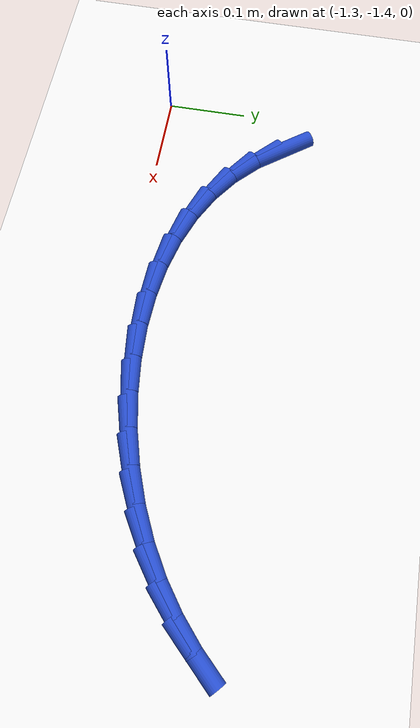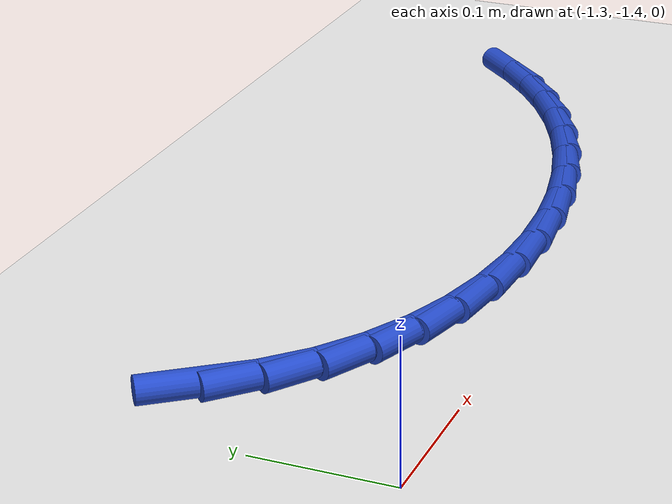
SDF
<sdf version="1.6">
 <world name="default">
  <model name="ground_plane">
   <static>1</static>
   <link name="link">
    <collision name="collision">
     <geometry><plane><normal>0 0 1</normal><size>100 100</size></plane></geometry>
     <surface><friction><ode><mu>100</mu><mu2>50</mu2></ode></friction></surface>
    </collision>
    <visual name="visual">
     <cast_shadows>0</cast_shadows>
     <geometry><plane><normal>0 0 1</normal><size>100 100</size></plane></geometry>
     <material>
      <script><uri>file://media/materials/scripts/gazebo.material</uri><name>Gazebo/WhiteGlow</name></script>
     </material>
    </visual>
   </link>
  </model>
  <model name="line">
   <link name="link_155">
    <pose>-1.2452337905211937 -1.2396163666302056 0.01 0 1.57 -0.9285341827054877</pose>
    <collision name="collision">
     <geometry><cylinder><radius>0.01</radius><length>0.08</length></cylinder></geometry>
    </collision>
    <visual name="visual">
     <material>
      <script><name>Gazebo/Blue</name><uri>file://media/materials/scripts/gazebo.material</uri></script>
     </material>
     <geometry><cylinder><radius>0.01</radius><length>0.08</length></cylinder></geometry>
    </visual>
   </link>
   <link name="link_156">
    <pose>-1.2212949467553944 -1.271617348525384 0.01 0 1.57 -0.7692866587407013</pose>
    <collision name="collision">
     <geometry><cylinder><radius>0.01</radius><length>0.08</length></cylinder></geometry>
    </collision>
    <visual name="visual">
     <material>
      <script><name>Gazebo/Blue</name><uri>file://media/materials/scripts/gazebo.material</uri></script>
     </material>
     <geometry><cylinder><radius>0.01</radius><length>0.08</length></cylinder></geometry>
    </visual>
   </link>
   <link name="link_157">
    <pose>-1.1931906292006225 -1.2988303438120599 0.01 0 1.57 -0.6185581953738359</pose>
    <collision name="collision">
     <geometry><cylinder><radius>0.01</radius><length>0.08</length></cylinder></geometry>
    </collision>
    <visual name="visual">
     <material>
      <script><name>Gazebo/Blue</name><uri>file://media/materials/scripts/gazebo.material</uri></script>
     </material>
     <geometry><cylinder><radius>0.01</radius><length>0.08</length></cylinder></geometry>
    </visual>
   </link>
   <link name="link_158">
    <pose>-1.161455115508071 -1.3214176069489603 0.01 0 1.57 -0.4797670484269586</pose>
    <collision name="collision">
     <geometry><cylinder><radius>0.01</radius><length>0.08</length></cylinder></geometry>
    </collision>
    <visual name="visual">
     <material>
      <script><name>Gazebo/Blue</name><uri>file://media/materials/scripts/gazebo.material</uri></script>
     </material>
     <geometry><cylinder><radius>0.01</radius><length>0.08</length></cylinder></geometry>
    </visual>
   </link>
   <link name="link_159">
    <pose>-1.1266227067140486 -1.339541424427525 0.01 0 1.57 -0.3540625128537004</pose>
    <collision name="collision">
     <geometry><cylinder><radius>0.01</radius><length>0.08</length></cylinder></geometry>
    </collision>
    <visual name="visual">
     <material>
      <script><name>Gazebo/Blue</name><uri>file://media/materials/scripts/gazebo.material</uri></script>
     </material>
     <geometry><cylinder><radius>0.01</radius><length>0.08</length></cylinder></geometry>
    </visual>
   </link>
   <link name="link_160">
    <pose>-1.0892277038548643 -1.353364082739193 0.01 0 1.57 -0.240867288251652</pose>
    <collision name="collision">
     <geometry><cylinder><radius>0.01</radius><length>0.08</length></cylinder></geometry>
    </collision>
    <visual name="visual">
     <material>
      <script><name>Gazebo/Blue</name><uri>file://media/materials/scripts/gazebo.material</uri></script>
     </material>
     <geometry><cylinder><radius>0.01</radius><length>0.08</length></cylinder></geometry>
    </visual>
   </link>
   <link name="link_161">
    <pose>-1.0498044079668276 -1.3630478683754041 0.01 0 1.57 -0.13858724700554165</pose>
    <collision name="collision">
     <geometry><cylinder><radius>0.01</radius><length>0.08</length></cylinder></geometry>
    </collision>
    <visual name="visual">
     <material>
      <script><name>Gazebo/Blue</name><uri>file://media/materials/scripts/gazebo.material</uri></script>
     </material>
     <geometry><cylinder><radius>0.01</radius><length>0.08</length></cylinder></geometry>
    </visual>
   </link>
   <link name="link_162">
    <pose>-1.008887120086248 -1.3687550678275981 0.01 0 1.57 -0.04517069325732246</pose>
    <collision name="collision">
     <geometry><cylinder><radius>0.01</radius><length>0.08</length></cylinder></geometry>
    </collision>
    <visual name="visual">
     <material>
      <script><name>Gazebo/Blue</name><uri>file://media/materials/scripts/gazebo.material</uri></script>
     </material>
     <geometry><cylinder><radius>0.01</radius><length>0.08</length></cylinder></geometry>
    </visual>
   </link>
   <link name="link_163">
    <pose>-0.9670101412494349 -1.3706479675872143 0.01 0 1.57 0.041560332444642335</pose>
    <collision name="collision">
     <geometry><cylinder><radius>0.01</radius><length>0.08</length></cylinder></geometry>
    </collision>
    <visual name="visual">
     <material>
      <script><name>Gazebo/Blue</name><uri>file://media/materials/scripts/gazebo.material</uri></script>
     </material>
     <geometry><cylinder><radius>0.01</radius><length>0.08</length></cylinder></geometry>
    </visual>
   </link>
   <link name="link_164">
    <pose>-0.9247077724926963 -1.368888854145692 0.01 0 1.57 0.12376357542144878</pose>
    <collision name="collision">
     <geometry><cylinder><radius>0.01</radius><length>0.08</length></cylinder></geometry>
    </collision>
    <visual name="visual">
     <material>
      <script><name>Gazebo/Blue</name><uri>file://media/materials/scripts/gazebo.material</uri></script>
     </material>
     <geometry><cylinder><radius>0.01</radius><length>0.08</length></cylinder></geometry>
    </visual>
   </link>
   <link name="link_165">
    <pose>-0.8825143148523439 -1.3636400139944707 0.01 0 1.57 0.2035489130333612</pose>
    <collision name="collision">
     <geometry><cylinder><radius>0.01</radius><length>0.08</length></cylinder></geometry>
    </collision>
    <visual name="visual">
     <material>
      <script><name>Gazebo/Blue</name><uri>file://media/materials/scripts/gazebo.material</uri></script>
     </material>
     <geometry><cylinder><radius>0.01</radius><length>0.08</length></cylinder></geometry>
    </visual>
   </link>
   <link name="link_166">
    <pose>-0.8409640693646859 -1.35506373362499 0.01 0 1.57 0.28301903546379564</pose>
    <collision name="collision">
     <geometry><cylinder><radius>0.01</radius><length>0.08</length></cylinder></geometry>
    </collision>
    <visual name="visual">
     <material>
      <script><name>Gazebo/Blue</name><uri>file://media/materials/scripts/gazebo.material</uri></script>
     </material>
     <geometry><cylinder><radius>0.01</radius><length>0.08</length></cylinder></geometry>
    </visual>
   </link>
   <link name="link_167">
    <pose>-0.8005913370660317 -1.3433222995286898 0.01 0 1.57 0.36434782178806513</pose>
    <collision name="collision">
     <geometry><cylinder><radius>0.01</radius><length>0.08</length></cylinder></geometry>
    </collision>
    <visual name="visual">
     <material>
      <script><name>Gazebo/Blue</name><uri>file://media/materials/scripts/gazebo.material</uri></script>
     </material>
     <geometry><cylinder><radius>0.01</radius><length>0.08</length></cylinder></geometry>
    </visual>
   </link>
   <link name="link_168">
    <pose>-0.7619304189926908 -1.3285779981970087 0.01 0 1.57 0.44987813460158443</pose>
    <collision name="collision">
     <geometry><cylinder><radius>0.01</radius><length>0.08</length></cylinder></geometry>
    </collision>
    <visual name="visual">
     <material>
      <script><name>Gazebo/Blue</name><uri>file://media/materials/scripts/gazebo.material</uri></script>
     </material>
     <geometry><cylinder><radius>0.01</radius><length>0.08</length></cylinder></geometry>
    </visual>
   </link>
   <link name="link_169">
    <pose>-0.7255156161809725 -1.3109931161213872 0.01 0 1.57 0.5421384284980361</pose>
    <collision name="collision">
     <geometry><cylinder><radius>0.01</radius><length>0.08</length></cylinder></geometry>
    </collision>
    <visual name="visual">
     <material>
      <script><name>Gazebo/Blue</name><uri>file://media/materials/scripts/gazebo.material</uri></script>
     </material>
     <geometry><cylinder><radius>0.01</radius><length>0.08</length></cylinder></geometry>
    </visual>
   </link>
   <link name="link_170">
    <pose>-0.6918757733562256 -1.2907304878714096 0.01 0 1.57 0.6384475993368818</pose>
    <collision name="collision">
     <geometry><cylinder><radius>0.01</radius><length>0.08</length></cylinder></geometry>
    </collision>
    <visual name="visual">
     <material>
      <script><name>Gazebo/Blue</name><uri>file://media/materials/scripts/gazebo.material</uri></script>
     </material>
     <geometry><cylinder><radius>0.01</radius><length>0.08</length></cylinder></geometry>
    </visual>
   </link>
   <link name="link_171">
    <pose>-0.6612262399896297 -1.267984438138637 0.01 0 1.57 0.7299852682830668</pose>
    <collision name="collision">
     <geometry><cylinder><radius>0.01</radius><length>0.08</length></cylinder></geometry>
    </collision>
    <visual name="visual">
     <material>
      <script><name>Gazebo/Blue</name><uri>file://media/materials/scripts/gazebo.material</uri></script>
     </material>
     <geometry><cylinder><radius>0.01</radius><length>0.08</length></cylinder></geometry>
    </visual>
   </link>
   <link name="link_172">
    <pose>-0.6333042670684291 -1.242997315880946 0.01 0 1.57 0.8136764511354379</pose>
    <collision name="collision">
     <geometry><cylinder><radius>0.01</radius><length>0.08</length></cylinder></geometry>
    </collision>
    <visual name="visual">
     <material>
      <script><name>Gazebo/Blue</name><uri>file://media/materials/scripts/gazebo.material</uri></script>
     </material>
     <geometry><cylinder><radius>0.01</radius><length>0.08</length></cylinder></geometry>
    </visual>
   </link>
  </model>
 </world>
</sdf>
